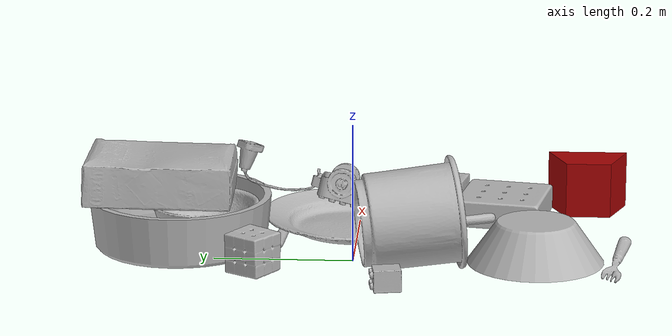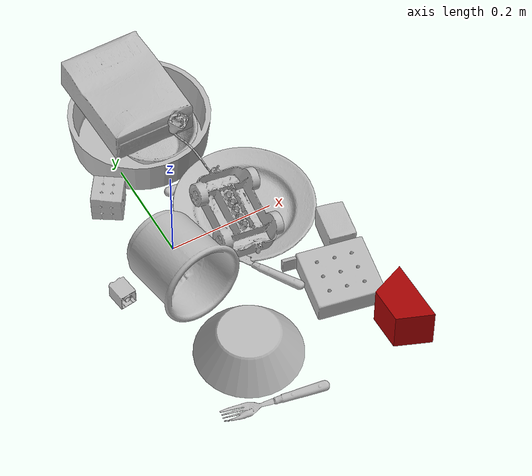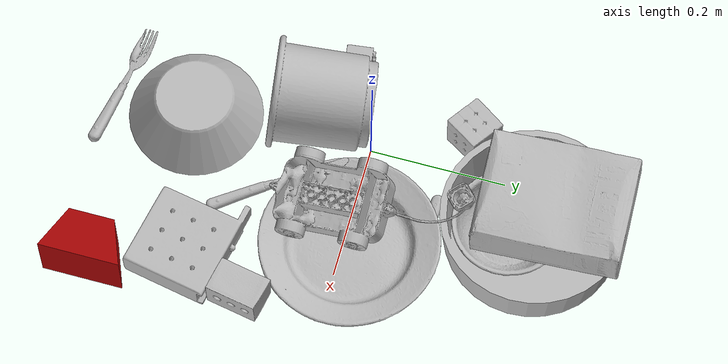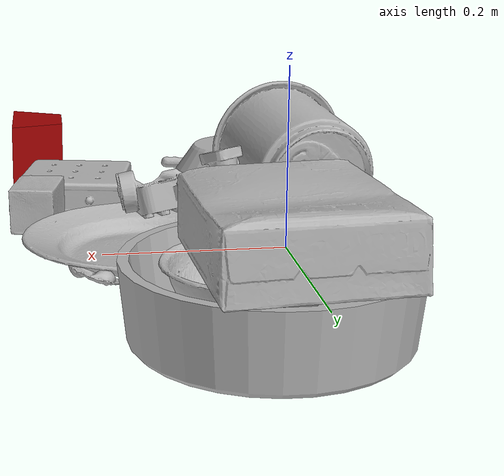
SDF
<sdf version="1.4">
  <world name="default">
    <light name="light1" type="point">
      <pose>0 0 1 0 0 0</pose>
      <diffuse>3 3 3 1</diffuse>
      <specular>3 3 3 1</specular>
    </light>
    <light name="light2" type="point">
      <pose>0 0.5 2 0 0 0</pose>
      <diffuse>1 1 1 1</diffuse>
      <specular>1 1 1 1</specular>
    </light>
    <light name="light3" type="point">
      <pose>0 0.5 2 0 0 0</pose>
      <diffuse>3 3 3 1</diffuse>
      <specular>3 3 3 1</specular>
    </light>
    <scene>
      <ambient>0.7 0.7 0.7</ambient>
    </scene>
    <model name="plate1">
      <link name="link_plate1">
        <collision name="default">
          <geometry>
            <mesh>
              <uri>model://pan_tefal/collision_meshes/collision.obj</uri>
              <scale>1.0 1.0 1.0</scale>
            </mesh>
          </geometry>
          <surface>
            <friction>
              <ode>
                <mu>0.5</mu>
                <mu2>0.5</mu2>
              </ode>
            </friction>
          <contact>
        <ode>
            <max_vel>0</max_vel>
            <min_depth>0.0001</min_depth>
            <kp>1e8</kp>
        </ode>
    </contact></surface>
        </collision>
        <visual name="default">
          <geometry>
            <mesh>
              <uri>model://pan_tefal/visual_meshes/visual.dae</uri>
              <scale>1.0 1.0 1.0</scale>
            </mesh>
          </geometry>
        </visual>
        <inertial>
          <mass>0.7575002908706665</mass>
          <pose>-0.00018002181604970247 3.278869189671241e-05 -0.00851493701338768 0.0008190213215647545 -0.0003301469994364688 -0.3318472895374236</pose>
          <inertia>
            <ixx>0.0052289874</ixx>
            <iyy>0.0052627004</iyy>
            <izz>0.009625561</izz>
            <ixy>0</ixy>
            <ixz>0</ixz>
            <iyz>0</iyz>
          </inertia>
        </inertial>
      </link>
      <pose>0.06823132187128067 0.2547673285007477 0.03804994001984596 3.188981834269708e-06 6.016952926046429e-06 1.8620300308236581</pose>
    </model>
    <model name="plate2">
      <link name="link_plate2">
        <collision name="default">
          <geometry>
            <mesh>
              <uri>model://plate/collision_meshes/collision.obj</uri>
              <scale>1.0 1.0 1.0</scale>
            </mesh>
          </geometry>
          <surface>
            <friction>
              <ode>
                <mu>0.5</mu>
                <mu2>0.5</mu2>
              </ode>
            </friction>
          <contact>
        <ode>
            <max_vel>0</max_vel>
            <min_depth>0.0001</min_depth>
            <kp>1e8</kp>
        </ode>
    </contact></surface>
        </collision>
        <visual name="default">
          <geometry>
            <mesh>
              <uri>model://plate/visual_meshes/visual.dae</uri>
              <scale>1.0 1.0 1.0</scale>
            </mesh>
          </geometry>
        </visual>
        <inertial>
          <mass>0.24305373430252075</mass>
          <pose>-0.0006044657784514129 0.0002782582014333457 -0.0010561988456174731 0.0022187349237576767 -0.0032255124479001144 0.4526250186623527</pose>
          <inertia>
            <ixx>0.00113701</ixx>
            <iyy>0.0011261352</iyy>
            <izz>0.0022238225</izz>
            <ixy>0</ixy>
            <ixz>0</ixz>
            <iyz>0</iyz>
          </inertia>
        </inertial>
      </link>
      <pose>0.15382200479507446 0.010214827954769135 0.014832192100584507 -0.009860758877799204 -0.012189491002686629 1.53079928989945</pose>
    </model>
    <model name="bowl1">
      <link name="link_bowl1">
        <collision name="default">
          <geometry>
            <mesh>
              <uri>model://bowl/collision_meshes/collision.obj</uri>
              <scale>1.0 1.0 1.0</scale>
            </mesh>
          </geometry>
          <surface>
            <friction>
              <ode>
                <mu>0.5</mu>
                <mu2>0.5</mu2>
              </ode>
            </friction>
          <contact>
        <ode>
            <max_vel>0</max_vel>
            <min_depth>0.0001</min_depth>
            <kp>1e8</kp>
        </ode>
    </contact></surface>
        </collision>
        <visual name="default">
          <geometry>
            <mesh>
              <uri>model://bowl/visual_meshes/visual.dae</uri>
              <scale>1.0 1.0 1.0</scale>
            </mesh>
          </geometry>
        </visual>
        <inertial>
          <mass>0.08028676360845566</mass>
          <pose>0.00020445045083761215 -0.0010302026057615876 -0.0008042661938816309 -0.015764207515600946 0.014546645366850262 0.7140316236369888</pose>
          <inertia>
            <ixx>0.00018442512</ixx>
            <iyy>0.00018030431</iyy>
            <izz>0.0003102665</izz>
            <ixy>0</ixy>
            <ixz>0</ixz>
            <iyz>0</iyz>
          </inertia>
        </inertial>
      </link>
      <pose>0.08131525665521622 0.2223764806985855 0.03553786501288414 0.0018675228107235809 -0.0024600820483336094 2.4946118994036635</pose>
    </model>
    <model name="bowl2">
      <link name="link_bowl2">
        <collision name="default">
          <geometry>
            <mesh>
              <uri>model://bowl_a/collision_meshes/collision.obj</uri>
              <scale>1.0 1.0 1.0</scale>
            </mesh>
          </geometry>
          <surface>
            <friction>
              <ode>
                <mu>0.5</mu>
                <mu2>0.5</mu2>
              </ode>
            </friction>
          <contact>
        <ode>
            <max_vel>0</max_vel>
            <min_depth>0.0001</min_depth>
            <kp>1e8</kp>
        </ode>
    </contact></surface>
        </collision>
        <visual name="default">
          <geometry>
            <mesh>
              <uri>model://bowl_a/visual_meshes/visual.dae</uri>
              <scale>1.0 1.0 1.0</scale>
            </mesh>
          </geometry>
        </visual>
        <inertial>
          <mass>0.2016693353652954</mass>
          <pose>0.000278673687716946 4.731108856503852e-05 -0.0013765295734629035 -0.0009805301894988984 -0.0010938186520021772 -0.19123883274053055</pose>
          <inertia>
            <ixx>0.00057416206</ixx>
            <iyy>0.000577687</iyy>
            <izz>0.0010211696</izz>
            <ixy>0</ixy>
            <ixz>0</ixz>
            <iyz>0</iyz>
          </inertia>
        </inertial>
      </link>
      <pose>0.010236935690045357 -0.26034754514694214 0.03010180965065956 3.141564430985632 1.0890475292581546e-05 2.5036508749927244</pose>
    </model>
    <model name="silverware1">
      <link name="link_silverware1">
        <collision name="default">
          <geometry>
            <mesh>
              <uri>model://spoon/collision_meshes/collision.obj</uri>
              <scale>1.0 1.0 1.0</scale>
            </mesh>
          </geometry>
          <surface>
            <friction>
              <ode>
                <mu>0.5</mu>
                <mu2>0.5</mu2>
              </ode>
            </friction>
          <contact>
        <ode>
            <max_vel>0</max_vel>
            <min_depth>0.0001</min_depth>
            <kp>1e8</kp>
        </ode>
    </contact></surface>
        </collision>
        <visual name="default">
          <geometry>
            <mesh>
              <uri>model://spoon/visual_meshes/visual.dae</uri>
              <scale>1.0 1.0 1.0</scale>
            </mesh>
          </geometry>
        </visual>
        <inertial>
          <mass>0.023438503965735435</mass>
          <pose>-0.005526317749172449 -0.0016034176805987954 -0.000727164966519922 0.03521671071703309 -0.03906584129558259 0.006150610048623938</pose>
          <inertia>
            <ixx>1.3036873e-06</ixx>
            <iyy>8.918272e-05</iyy>
            <izz>8.982564e-05</izz>
            <ixy>0</ixy>
            <ixz>0</ixz>
            <iyz>0</iyz>
          </inertia>
        </inertial>
      </link>
      <pose>0.1432305872440338 0.10786736756563187 0.00917105469852686 0.1982667275066473 0.008224637259828825 -0.08317929228947973</pose>
    </model>
    <model name="box1">
      <link name="link_box1">
        <collision name="default">
          <geometry>
            <mesh>
              <uri>model://cracker_box/collision_meshes/collision.obj</uri>
              <scale>1.0 1.0 1.0</scale>
            </mesh>
          </geometry>
          <surface>
            <friction>
              <ode>
                <mu>0.5</mu>
                <mu2>0.5</mu2>
              </ode>
            </friction>
          <contact>
        <ode>
            <max_vel>0</max_vel>
            <min_depth>0.0001</min_depth>
            <kp>1e8</kp>
        </ode>
    </contact></surface>
        </collision>
        <visual name="default">
          <geometry>
            <mesh>
              <uri>model://cracker_box/visual_meshes/visual.dae</uri>
              <scale>1.0 1.0 1.0</scale>
            </mesh>
          </geometry>
        </visual>
        <inertial>
          <mass>3.1733922958374023</mass>
          <pose>0.0009464119793847203 0.00025434247800149024 -0.0017029535956680775 -0.00031620768891544627 -0.011106485874643508 0.0025467963987026074</pose>
          <inertia>
            <ixx>0.008071693</ixx>
            <iyy>0.013327951</iyy>
            <izz>0.01902021</izz>
            <ixy>0</ixy>
            <ixz>0</ixz>
            <iyz>0</iyz>
          </inertia>
        </inertial>
      </link>
      <pose>0.05661061778664589 0.28056174516677856 0.1091751903295517 -0.026941948108913316 0.03861554726223245 -1.5383844479807043</pose>
    </model>
    <model name="box2">
      <link name="link_box2">
        <collision name="default">
          <geometry>
            <mesh>
              <uri>model://rubiks_cube/collision_meshes/collision.obj</uri>
              <scale>1.0 1.0 1.0</scale>
            </mesh>
          </geometry>
          <surface>
            <friction>
              <ode>
                <mu>0.5</mu>
                <mu2>0.5</mu2>
              </ode>
            </friction>
          <contact>
        <ode>
            <max_vel>0</max_vel>
            <min_depth>0.0001</min_depth>
            <kp>1e8</kp>
        </ode>
    </contact></surface>
        </collision>
        <visual name="default">
          <geometry>
            <mesh>
              <uri>model://rubiks_cube/visual_meshes/visual.dae</uri>
              <scale>1.0 1.0 1.0</scale>
            </mesh>
          </geometry>
        </visual>
        <inertial>
          <mass>0.15184316039085388</mass>
          <pose>2.6721041649580002e-05 5.2569666877388954e-05 -7.264316536748083e-06 -0.0546734747968529 -0.09813870099197174 -0.03445517010401606</pose>
          <inertia>
            <ixx>8.390353e-05</ixx>
            <iyy>8.351226e-05</iyy>
            <izz>8.459882e-05</izz>
            <ixy>0</ixy>
            <ixz>0</ixz>
            <iyz>0</iyz>
          </inertia>
        </inertial>
      </link>
      <pose>-0.05775776505470276 0.13853542506694794 0.029261846095323563 1.2514958981292261 1.5373791954844955 0.6731817625761778</pose>
    </model>
    <model name="cup1">
      <link name="link_cup1">
        <collision name="default">
          <geometry>
            <mesh>
              <uri>model://f_cups/collision_meshes/collision.obj</uri>
              <scale>2.0 2.0 2.0</scale>
            </mesh>
          </geometry>
          <surface>
            <friction>
              <ode>
                <mu>0.5</mu>
                <mu2>0.5</mu2>
              </ode>
            </friction>
          <contact>
        <ode>
            <max_vel>0</max_vel>
            <min_depth>0.0001</min_depth>
            <kp>1e8</kp>
        </ode>
    </contact></surface>
        </collision>
        <visual name="default">
          <geometry>
            <mesh>
              <uri>model://f_cups/visual_meshes/visual.dae</uri>
              <scale>2.0 2.0 2.0</scale>
            </mesh>
          </geometry>
        </visual>
        <inertial>
          <mass>0.31799542903900146</mass>
          <pose>-0.006342939101159573 -0.0012480145087465644 -0.00731107359752059 0.7862267301708457 -0.2607925342729672 -0.18237300859269054</pose>
          <inertia>
            <ixx>0.0011956966</ixx>
            <iyy>0.0012542997</iyy>
            <izz>0.001305761</izz>
            <ixy>0</ixy>
            <ixz>0</ixz>
            <iyz>0</iyz>
          </inertia>
        </inertial>
      </link>
      <pose>-0.029348481446504593 -0.08028119057416916 0.07420989125967026 1.1183937253360385 1.352493473451139 -0.28405049720536485</pose>
    </model>
    <model name="silverware2">
      <link name="link_silverware2">
        <collision name="default">
          <geometry>
            <mesh>
              <uri>model://knife/collision_meshes/collision.obj</uri>
              <scale>1.0 1.0 1.0</scale>
            </mesh>
          </geometry>
          <surface>
            <friction>
              <ode>
                <mu>0.5</mu>
                <mu2>0.5</mu2>
              </ode>
            </friction>
          <contact>
        <ode>
            <max_vel>0</max_vel>
            <min_depth>0.0001</min_depth>
            <kp>1e8</kp>
        </ode>
    </contact></surface>
        </collision>
        <visual name="default">
          <geometry>
            <mesh>
              <uri>model://knife/visual_meshes/visual.dae</uri>
              <scale>1.0 1.0 1.0</scale>
            </mesh>
          </geometry>
        </visual>
        <inertial>
          <mass>0.01713745854794979</mass>
          <pose>-0.02378525771200657 0.0015275123296305537 5.062021591584198e-05 0.07305753061421462 0.017248419855317693 -0.007409818535045194</pose>
          <inertia>
            <ixx>4.864306e-07</ixx>
            <iyy>6.583934e-05</iyy>
            <izz>6.5996e-05</izz>
            <ixy>0</ixy>
            <ixz>0</ixz>
            <iyz>0</iyz>
          </inertia>
        </inertial>
      </link>
      <pose>0.0976145789027214 -0.11092199385166168 0.02718455344438553 0.06747695621119353 -0.06184602880969181 2.1522562101629115</pose>
    </model>
    <model name="silverware3">
      <link name="link_silverware3">
        <collision name="default">
          <geometry>
            <mesh>
              <uri>model://fork/collision_meshes/collision.obj</uri>
              <scale>1.0 1.0 1.0</scale>
            </mesh>
          </geometry>
          <surface>
            <friction>
              <ode>
                <mu>0.5</mu>
                <mu2>0.5</mu2>
              </ode>
            </friction>
          <contact>
        <ode>
            <max_vel>0</max_vel>
            <min_depth>0.0001</min_depth>
            <kp>1e8</kp>
        </ode>
    </contact></surface>
        </collision>
        <visual name="default">
          <geometry>
            <mesh>
              <uri>model://fork/visual_meshes/visual.dae</uri>
              <scale>1.0 1.0 1.0</scale>
            </mesh>
          </geometry>
        </visual>
        <inertial>
          <mass>0.012323527596890926</mass>
          <pose>-0.029570043087005615 0.00046588233090005815 0.0003218861238565296 -0.013551145261099908 -0.01097783717976447 0.01445390335153306</pose>
          <inertia>
            <ixx>4.3200933e-07</ixx>
            <iyy>3.2173175e-05</iyy>
            <izz>3.236641e-05</izz>
            <ixy>0</ixy>
            <ixz>0</ixz>
            <iyz>0</iyz>
          </inertia>
        </inertial>
      </link>
      <pose>-0.002051660791039467 -0.3754841685295105 0.005693597253412008 -0.18054372828452644 0.025318366328908885 2.9686573733234267</pose>
    </model>
    <model name="toy1">
      <link name="link_toy1">
        <collision name="default">
          <geometry>
            <mesh>
              <uri>model://foam_brick/collision_meshes/collision.obj</uri>
              <scale>1.0 1.0 1.0</scale>
            </mesh>
          </geometry>
          <surface>
            <friction>
              <ode>
                <mu>0.5</mu>
                <mu2>0.5</mu2>
              </ode>
            </friction>
          <contact>
        <ode>
            <max_vel>0</max_vel>
            <min_depth>0.0001</min_depth>
            <kp>1e8</kp>
        </ode>
    </contact></surface>
        </collision>
        <visual name="default">
          <geometry>
            <mesh>
              <uri>model://foam_brick/visual_meshes/visual.dae</uri>
              <scale>1.0 1.0 1.0</scale>
            </mesh>
          </geometry>
        </visual>
        <inertial>
          <mass>0.22379855811595917</mass>
          <pose>-0.00025224717683158815 0.0003458436403889209 -0.0002532101352699101 -0.29401565582258504 0.017274431815567964 -0.0007449878256007176</pose>
          <inertia>
            <ixx>9.775939e-05</ixx>
            <iyy>0.00015607789</iyy>
            <izz>0.00015806146</izz>
            <ixy>0</ixy>
            <ixz>0</ixz>
            <iyz>0</iyz>
          </inertia>
        </inertial>
      </link>
      <pose>0.2683032155036926 -0.11920660734176636 0.02591068483889103 1.582820110591315 -0.00037286581377540617 1.385493417712176</pose>
    </model>
    <model name="toy2">
      <link name="link_toy2">
        <collision name="default">
          <geometry>
            <mesh>
              <uri>model://g_lego_duplo/collision_meshes/collision.obj</uri>
              <scale>1.0 1.0 1.0</scale>
            </mesh>
          </geometry>
          <surface>
            <friction>
              <ode>
                <mu>0.5</mu>
                <mu2>0.5</mu2>
              </ode>
            </friction>
          <contact>
        <ode>
            <max_vel>0</max_vel>
            <min_depth>0.0001</min_depth>
            <kp>1e8</kp>
        </ode>
    </contact></surface>
        </collision>
        <visual name="default">
          <geometry>
            <mesh>
              <uri>model://g_lego_duplo/visual_meshes/visual.dae</uri>
              <scale>1.0 1.0 1.0</scale>
            </mesh>
          </geometry>
        </visual>
        <inertial>
          <mass>0.5124852657318115</mass>
          <pose>-0.05004769191145897 0.0017554633086547256 0.003880675183609128 0.010962987419080987 0.0381082502855883 -0.09653031806986456</pose>
          <inertia>
            <ixx>0.0007425969</ixx>
            <iyy>0.0022451086</iyy>
            <izz>0.0028087152</izz>
            <ixy>0</ixy>
            <ixz>0</ixz>
            <iyz>0</iyz>
          </inertia>
        </inertial>
      </link>
      <pose>0.11387425661087036 0.03388494625687599 0.08124704658985138 -2.9400149467146326 -0.24351201002410286 1.535211535417602</pose>
    </model>
    <model name="toy3">
      <link name="link_toy3">
        <collision name="default">
          <geometry>
            <mesh>
              <uri>model://nine_hole_peg_test/collision_meshes/collision.obj</uri>
              <scale>1.0 1.0 1.0</scale>
            </mesh>
          </geometry>
          <surface>
            <friction>
              <ode>
                <mu>0.5</mu>
                <mu2>0.5</mu2>
              </ode>
            </friction>
          <contact>
        <ode>
            <max_vel>0</max_vel>
            <min_depth>0.0001</min_depth>
            <kp>1e8</kp>
        </ode>
    </contact></surface>
        </collision>
        <visual name="default">
          <geometry>
            <mesh>
              <uri>model://nine_hole_peg_test/visual_meshes/visual.dae</uri>
              <scale>1.0 1.0 1.0</scale>
            </mesh>
          </geometry>
        </visual>
        <inertial>
          <mass>0.8364987969398499</mass>
          <pose>-0.004617386497557163 -0.009647614322602749 2.6460691515239887e-05 -0.0014666793226822761 0.000719418076932787 -0.634241593386854</pose>
          <inertia>
            <ixx>0.0013080036</ixx>
            <iyy>0.0012212693</iyy>
            <izz>0.0022920077</izz>
            <ixy>0</ixy>
            <ixz>0</ixz>
            <iyz>0</iyz>
          </inertia>
        </inertial>
      </link>
      <pose>0.21207024157047272 -0.207699716091156 0.020771000534296036 6.567963366233207e-08 -2.496048495879534e-07 1.385546388407577</pose>
    </model>
    <model name="toy4">
      <link name="link_toy4">
        <collision name="default">
          <geometry>
            <mesh>
              <uri>model://b_lego_duplo/collision_meshes/collision.obj</uri>
              <scale>1.0 1.0 1.0</scale>
            </mesh>
          </geometry>
          <surface>
            <friction>
              <ode>
                <mu>0.5</mu>
                <mu2>0.5</mu2>
              </ode>
            </friction>
          <contact>
        <ode>
            <max_vel>0</max_vel>
            <min_depth>0.0001</min_depth>
            <kp>1e8</kp>
        </ode>
    </contact></surface>
        </collision>
        <visual name="default">
          <geometry>
            <mesh>
              <uri>model://b_lego_duplo/visual_meshes/visual.dae</uri>
              <scale>1.0 1.0 1.0</scale>
            </mesh>
          </geometry>
        </visual>
        <inertial>
          <mass>0.0316849946975708</mass>
          <pose>-0.00011053055641241372 -9.15226701181382e-06 0.0019294292433187366 -0.03749472548528336 -0.026354304906346077 0.4518915128408031</pose>
          <inertia>
            <ixx>6.4845735e-06</ixx>
            <iyy>6.5281647e-06</iyy>
            <izz>5.777544e-06</izz>
            <ixy>0</ixy>
            <ixz>0</ixz>
            <iyz>0</iyz>
          </inertia>
        </inertial>
      </link>
      <pose>-0.1295054852962494 -0.05137983337044716 0.01621648482978344 -1.5801981179806701 0.0003643963502059678 0.13129480473098268</pose>
    </model>
    <model name="toy5">
      <link name="link_toy5">
        <collision name="default">
          <geometry>
            <mesh>
              <uri>model://prism/collision_meshes/collision.obj</uri>
              <scale>1.0 1.0 1.0</scale>
            </mesh>
          </geometry>
          <surface>
            <friction>
              <ode>
                <mu>0.5</mu>
                <mu2>0.5</mu2>
              </ode>
            </friction>
          <contact>
        <ode>
            <max_vel>0</max_vel>
            <min_depth>0.0001</min_depth>
            <kp>1e8</kp>
        </ode>
    </contact></surface>
        </collision>
        <visual name="default">
          <geometry>
            <mesh>
              <uri>model://prism/visual_meshes/visual.dae</uri>
              <scale>1.0 1.0 1.0</scale>
            </mesh>
          </geometry>
        </visual>
        <inertial>
          <mass>0.34586653113365173</mass>
          <pose>-9.853597293840721e-05 -4.96157269935793e-07 -0.0033869100734591484 0.0 0.006559180766136186 0.0</pose>
          <inertia>
            <ixx>0.00031214024</ixx>
            <iyy>0.00037722557</iyy>
            <izz>0.00046205617</izz>
            <ixy>0</ixy>
            <ixz>0</ixz>
            <iyz>0</iyz>
          </inertia>
        </inertial>
      </link>
      <pose>0.2672727406024933 -0.341309517621994 0.041588496416807175 1.5836357239751955 4.5927270205408895e-07 -1.5704779006459693</pose>
    </model>
  <physics type="ode">
      <max_contacts>50</max_contacts>
      <ode>
        <solver>
          <type>quick</type>
          <iters>75</iters>
        </solver>
        <constraints>
          <contact_max_correcting_vel>0</contact_max_correcting_vel>
          <contact_surface_layer>0</contact_surface_layer>
        </constraints>
      </ode>
    </physics></world>
</sdf>
